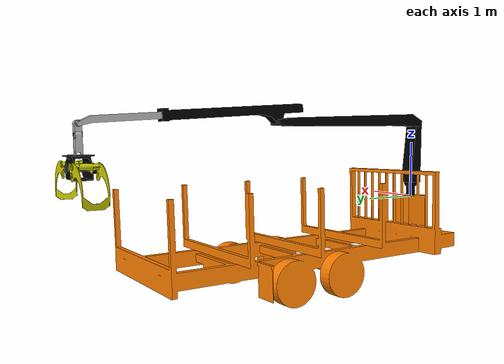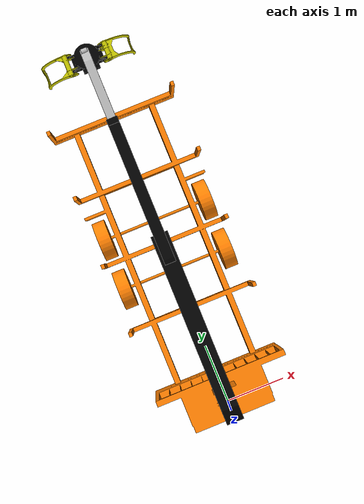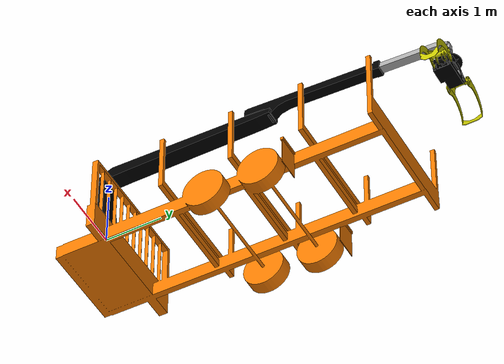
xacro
<?xml version="1.0" encoding="utf-8"?>
<robot name="crane_robot" xmlns:xacro="http://ros.org/wiki/xacro">

  <xacro:include filename="$(find fpi_crane_description)/urdf/sensors.xacro"/>

  <xacro:arg name="replay" default="false"/>

  <!-- material definition -->
  <material name="black">
	<color rgba="0 0 0 1"/>
  </material>
  <material name="gray">
	<color rgba="0.7 0.7 0.7 1"/>
  </material>
  <material name="yellow">
	<color rgba="0.8 0.8 0 1"/>
  </material>
  <material name="orange">
	<color rgba="1 0.5 0 1"/>
  </material>
  <!-- links -->
  <link name="base_link">
	<visual>
	  <geometry>
		<mesh filename="package://fpi_crane_description/meshes/base.stl"/>
	  </geometry>
	  <origin rpy="0 0 0" xyz="0 0 0"/>
	  <material name="black"/>
	</visual>
  </link>
  <link name="mast">
	<visual>
	  <geometry>
		<mesh filename="package://fpi_crane_description/meshes/mast.stl"/>
	  </geometry>
	  <origin rpy="0 0 0" xyz="0 0 0"/>
	  <material name="black"/>
	</visual>
  </link>
  <link name="mainboom">
	<visual>
	  <geometry>
		<mesh filename="package://fpi_crane_description/meshes/mainboom.stl"/>
	  </geometry>
	  <origin rpy="0 0 0" xyz="0 0 0"/>
	  <material name="black"/>
	</visual>
  </link>
  <link name="stick">
	<visual>
	  <geometry>
		<mesh filename="package://fpi_crane_description/meshes/stick.stl"/>
	  </geometry>
	  <origin rpy="0 0 0" xyz="0 0 0"/>
	  <material name="black"/>
	</visual>
  </link>
  <link name="telescope">
	<visual>
	  <geometry>
		<mesh filename="package://fpi_crane_description/meshes/telescope.stl"/>
	  </geometry>
	  <origin rpy="0 0 0" xyz="0 0 0"/>
	  <material name="gray"/>
	</visual>
  </link>
  <link name="upperpassive">
	<visual>
	  <geometry>
		<mesh filename="package://fpi_crane_description/meshes/upperpassive.stl"/>
	  </geometry>
	  <origin rpy="0 0 0" xyz="0 0 0"/>
	  <material name="gray"/>
	</visual>
  </link>
  <link name="lowerpassive">
	<visual>
	  <geometry>
		<mesh filename="package://fpi_crane_description/meshes/lowerpassive.stl"/>
	  </geometry>
	  <origin rpy="0 0 0" xyz="0 0 0"/>
	  <material name="gray"/>
	</visual>
  </link>
  <link name="grapplecarrier">
	<visual>
	  <geometry>
		<mesh filename="package://fpi_crane_description/meshes/grapplecarrier.stl"/>
	  </geometry>
	  <origin rpy="0 0 0" xyz="0 0 0"/>
	  <material name="black"/>
	</visual>
  </link>
  <link name="grappletong1">
	<visual>
	  <geometry>
		<mesh filename="package://fpi_crane_description/meshes/grappletong1.stl"/>
	  </geometry>
	  <origin rpy="0 0 0" xyz="0 0 0"/>
	  <material name="yellow"/>
	</visual>
  </link>
  <link name="grappletong2">
	<visual>
	  <geometry>
		<mesh filename="package://fpi_crane_description/meshes/grappletong2.stl"/>
	  </geometry>
	  <origin rpy="0 0 0" xyz="0 0 0"/>
	  <material name="yellow"/>
	</visual>
  </link>
  <link name="trailer">
	<visual>
	  <geometry>
		<mesh filename="package://fpi_crane_description/meshes/trailer.stl"/>
	  </geometry>
	  <origin rpy="0 0 0" xyz="0  0 0.625"/>
	  <material name="orange"/>
	</visual>
  </link>
  <link name="camera_zed">
	<origin xyz="0.06 -0.0335 0" rpy="0 0 3.1416"/>
  </link>
  <link name="mast_sensor_bracket"/>
  <link name="grappletong1_tip"/>
  <link name="grappletong2_tip"/>
  <!-- joints -->
  <joint name="slew_joint" type="revolute">
	<parent link="base_link"/>
	<child link="mast"/>
	<origin xyz="0 0 0.26881"/>
	<axis rpy="0 0 0" xyz="0 0 1"/>
	<limit effort="500.0" lower="-1.82" upper="1.82" velocity="0.1745"/>
  </joint>
  <joint name="boom_joint" type="revolute">
	<parent link="mast"/>
	<child link="mainboom"/>
	<origin xyz="0 -0.0601374 1.09553"/>
	<axis rpy="0 0 0" xyz="1 0 0"/>
	<limit effort="500.0" lower="-0.383972" upper="1.309" velocity="0.1745"/>
  </joint>
  <joint name="stick_joint" type="revolute">
	<parent link="mainboom"/>
	<child link="stick"/>
	<origin xyz="0 3.04904 -0.00649"/>
	<axis rpy="0 0 0" xyz="1 0 0"/>
	<limit effort="500.0" lower="-3.08574" upper="0.035" velocity="0.1745"/>
  </joint>
  <joint name="telescope_joint" type="prismatic">
	<parent link="stick"/>
	<child link="telescope"/>
	<origin xyz="0 0.1256771629 0.21905106705"/>
	<axis rpy="0 0 0" xyz="0 0.997833966 -0.065782793"/>
	<limit effort="500.0" lower="0.13" upper="1.8" velocity="0.1"/>
  </joint>
  <joint name="hanger_joint" type="revolute">
	<parent link="telescope"/>
	<child link="upperpassive"/>
	<origin xyz="0 2.03711 -0.20229"/>
	<axis rpy="0 0 0" xyz="1 0 0"/>
	<limit effort="500.0" lower="-3.14159" upper="3.14159" velocity="0.1745"/>
  </joint>
  <joint name="bearingfork_joint" type="revolute">
	<parent link="upperpassive"/>
	<child link="lowerpassive"/>
	<origin xyz="0 0 -0.154"/>
	<axis rpy="0 0 0" xyz="0 1 0"/>
	<limit effort="500.0" lower="-3.14159" upper="3.14159" velocity="0.1745"/>
  </joint>
  <joint name="grapplecarrier_joint" type="revolute">
	<parent link="lowerpassive"/>
	<child link="grapplecarrier"/>
	<origin xyz="0 0 -0.261"/>
	<axis rpy="0 -1.22173 0" xyz="0 0 1"/>
	<limit effort="500.0" lower="-3.1241" upper="3.1241" velocity="0.1745"/>
  </joint>
  <joint name="grappletong1_joint" type="revolute">
	<parent link="grapplecarrier"/>
	<child link="grappletong1"/>
	<origin xyz="-0.275000000000001 -0.0192847891741644 -0.202"/>
	<axis rpy="0 0 0" xyz="0 -1 0"/>
	<limit effort="500.0" lower="0" upper="2.23402" velocity="0.1745"/>
  </joint>
  <joint name="grappletong2_joint" type="revolute">
	<parent link="grapplecarrier"/>
	<child link="grappletong2"/>
	<origin xyz="0.275000000000001 -0.0192847891741644 -0.202"/>
	<axis rpy="0 0 0" xyz="0 1 0"/>
	<limit effort="500.0" lower="0" upper="2.23402" velocity="0.1745"/>
  </joint>
  <joint name="trailer_joint" type="fixed">
	<parent link="base_link"/>
	<child link="trailer"/>
	<origin rpy="-0.010472 0.0191986 0" xyz="0 2.5525 -1.39"/>
  </joint>
  <joint name="camera_zed_joint" type="fixed">
	<parent link="stick"/>
	<child link="camera_zed"/>
	<origin rpy="-0.002374 0.009854 -0.039076"  xyz="-0.072910 0.326064 -0.025846"/>
  </joint>
  <joint name="mast_sensor_bracket_joint" type="fixed">
	<parent link="mast"/>
	<child link="mast_sensor_bracket"/>
	<origin rpy="0 0.1 -0.05"  xyz="-0.15 0 0.74"/>
  </joint>
  <joint name="grappletong1_tip_joint" type="fixed">
	<parent link="grappletong1"/>
	<child link="grappletong1_tip"/>
	<origin rpy="0 0 0"  xyz="-0.458 0.02 -0.458"/>
  </joint>
  <joint name="grappletong2_tip_joint" type="fixed">
	<parent link="grappletong2"/>
	<child link="grappletong2_tip"/>
	<origin rpy="0 0 0"  xyz="0.454 0.018 -0.454"/>
  </joint>

  <xacro:zed_sensor
	name="zed_1"
	parent="camera_zed"
	xyz="0 0 0"
	rpy="0 0 1.57"
  />
  <!-- lidar_0 mount: model-based calibrated 2026-06-19 (was xyz="0 0 0" rpy="3.14 0 1.57") -->
  <xacro:ouster_lidar_sensor
	name="lidar_0"
	parent="mast_sensor_bracket"
	xyz="-0.043806 0.063314 -0.021948"
	rpy="3.014570 -0.058712 1.592957"
  />
  <xacro:zed_sensor
	name="zed_0"
	parent="mast"
	xyz="-0.389435 -0.043649 1.261451"
	rpy="-0.019053 0.399585 1.732204"
  />

  <!-- zed_0/zed_1 camera-internal frames for rosbag replay (values from the zed tf_static,
       identical to what the live driver publishes). Only added when replay:=true. -->
  <xacro:if value="$(arg replay)">
	<link name="zed_0_camera_center"/>
	<joint name="zed_0_camera_center_joint" type="fixed">
	  <parent link="zed_0_camera_link"/>
	  <child link="zed_0_camera_center"/>
	  <origin xyz="0 0 0.016" rpy="0 0 0"/>
	</joint>
	<link name="zed_0_left_camera_frame"/>
	<joint name="zed_0_left_camera_frame_joint" type="fixed">
	  <parent link="zed_0_camera_center"/>
	  <child link="zed_0_left_camera_frame"/>
	  <origin xyz="-0.01 0.06 0" rpy="0 0 0"/>
	</joint>
	<link name="zed_1_camera_center"/>
	<joint name="zed_1_camera_center_joint" type="fixed">
	  <parent link="zed_1_camera_link"/>
	  <child link="zed_1_camera_center"/>
	  <origin xyz="0 0 0.016" rpy="0 0 0"/>
	</joint>
	<link name="zed_1_left_camera_frame"/>
	<joint name="zed_1_left_camera_frame_joint" type="fixed">
	  <parent link="zed_1_camera_center"/>
	  <child link="zed_1_left_camera_frame"/>
	  <origin xyz="-0.01 0.06 0" rpy="0 0 0"/>
	</joint>
  </xacro:if>

</robot>

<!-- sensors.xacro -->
<robot xmlns:xacro="http://ros.org/wiki/xacro">

  <xacro:macro name="zed_sensor" params="name parent xyz rpy">
    <link name="${name}_camera_link"/>
    <joint name="${name}_joint" type="fixed">
      <parent link="${parent}"/>
      <child link="${name}_camera_link"/>
      <origin xyz="${xyz}" rpy="${rpy}"/>
    </joint>
  </xacro:macro>

  <xacro:macro name="ouster_lidar_sensor" params="name parent xyz rpy">
    <link name="${name}/os_sensor"/>
    <joint name="${name}_os_sensor_joint" type="fixed">
      <parent link="${parent}"/>
      <child link="${name}/os_sensor"/>
      <origin xyz="${xyz}" rpy="${rpy}"/>
    </joint>
  </xacro:macro>

</robot>
